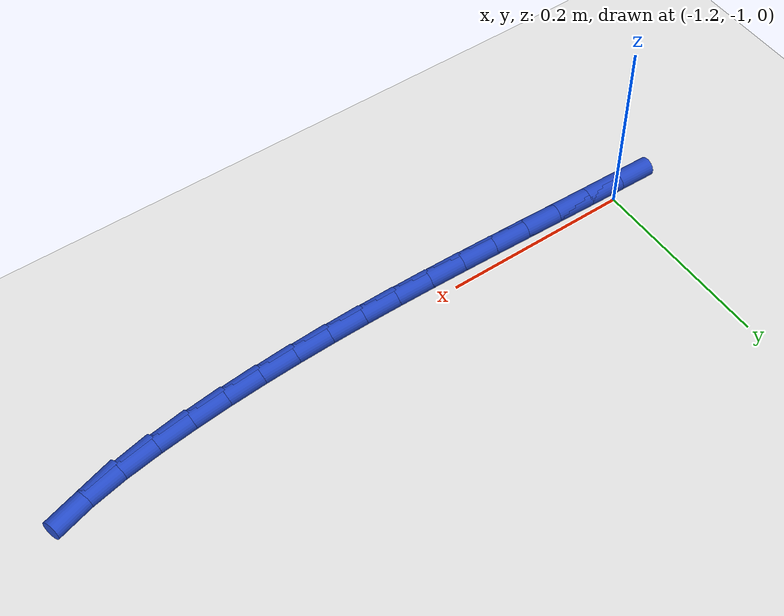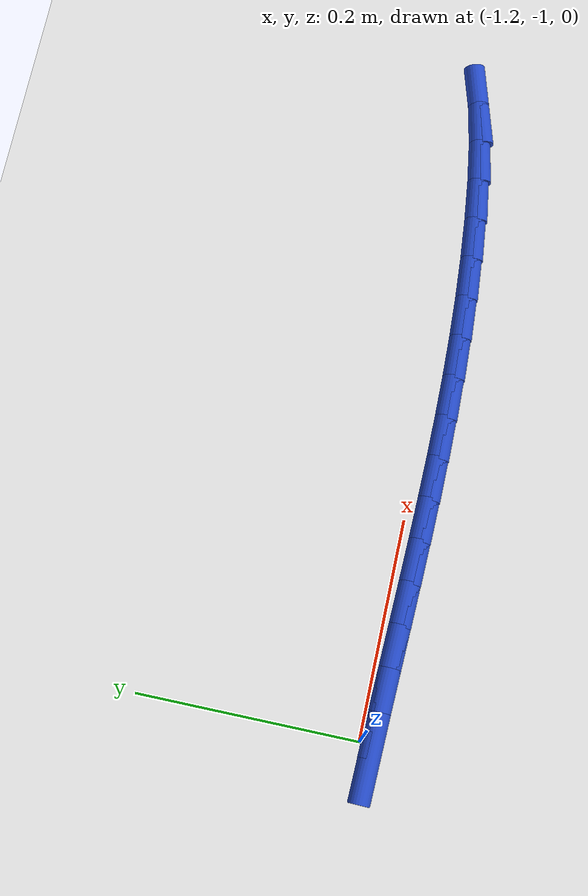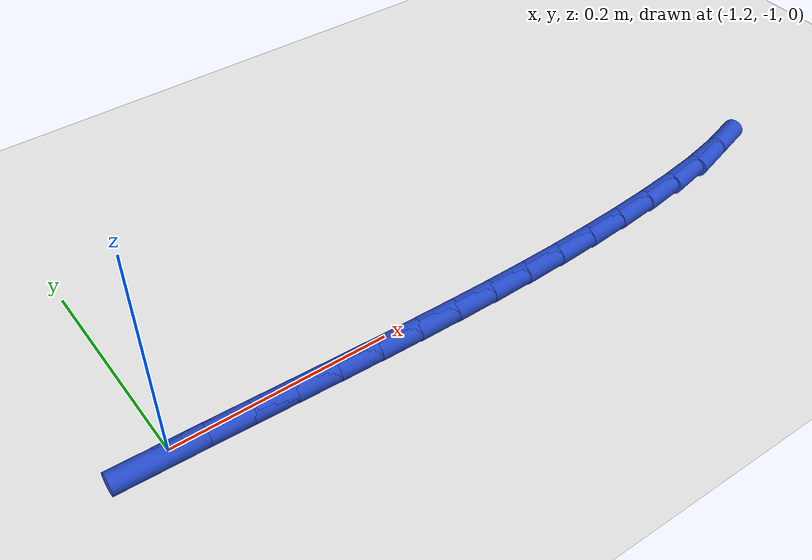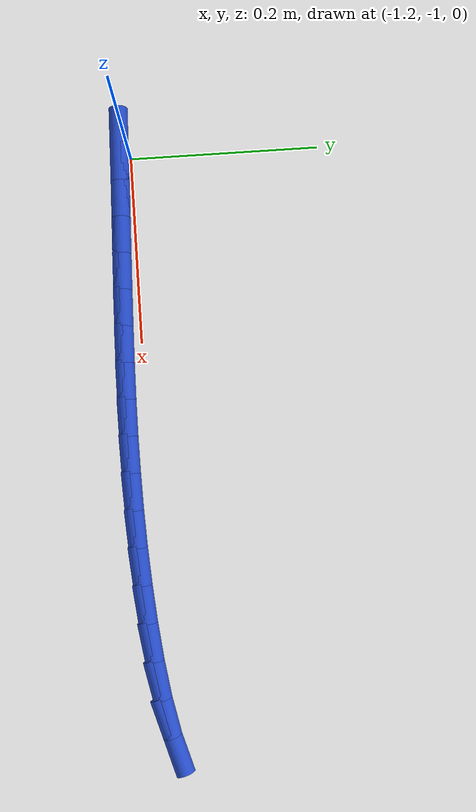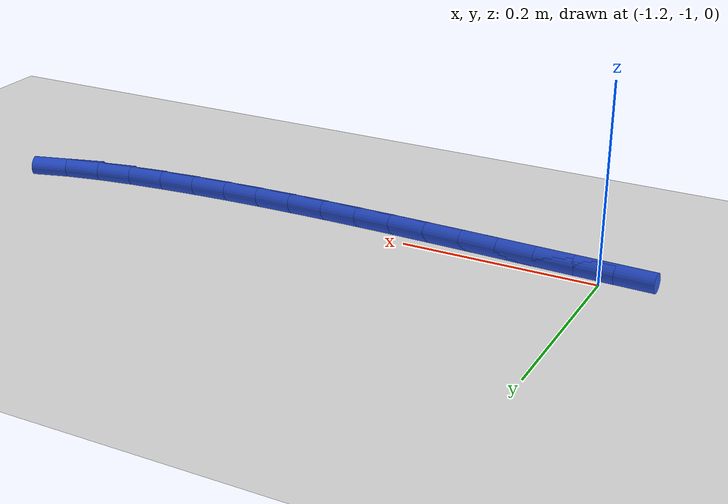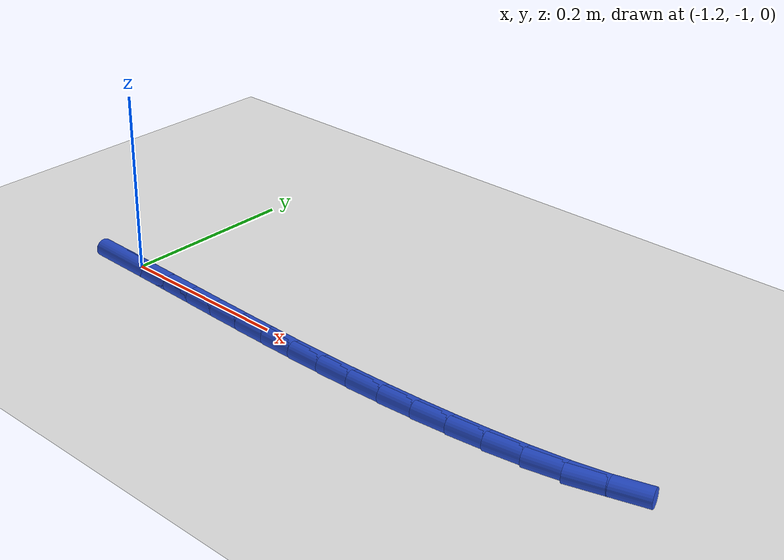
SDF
<sdf version="1.6">
 <world name="default">
  <model name="ground_plane">
   <static>1</static>
   <link name="link">
    <collision name="collision">
     <geometry><plane><normal>0 0 1</normal><size>100 100</size></plane></geometry>
     <surface><friction><ode><mu>100</mu><mu2>50</mu2></ode></friction></surface>
    </collision>
    <visual name="visual">
     <cast_shadows>0</cast_shadows>
     <geometry><plane><normal>0 0 1</normal><size>100 100</size></plane></geometry>
     <material>
      <script><uri>file://media/materials/scripts/gazebo.material</uri><name>Gazebo/WhiteGlow</name></script>
     </material>
    </visual>
   </link>
  </model>
  <model name="line">
   <link name="link_163">
    <pose>-1.2120973122388867 -1.011079760993356 0.01 0 1.57 -0.02630069227347689</pose>
    <collision name="collision">
     <geometry><cylinder><radius>0.01</radius><length>0.08</length></cylinder></geometry>
    </collision>
    <visual name="visual">
     <material>
      <script><name>Gazebo/Blue</name><uri>file://media/materials/scripts/gazebo.material</uri></script>
     </material>
     <geometry><cylinder><radius>0.01</radius><length>0.08</length></cylinder></geometry>
    </visual>
   </link>
   <link name="link_164">
    <pose>-1.1730486498748138 -1.0121070047140128 0.01 0 1.57 -0.03079005885254407</pose>
    <collision name="collision">
     <geometry><cylinder><radius>0.01</radius><length>0.08</length></cylinder></geometry>
    </collision>
    <visual name="visual">
     <material>
      <script><name>Gazebo/Blue</name><uri>file://media/materials/scripts/gazebo.material</uri></script>
     </material>
     <geometry><cylinder><radius>0.01</radius><length>0.08</length></cylinder></geometry>
    </visual>
   </link>
   <link name="link_165">
    <pose>-1.1340988083329757 -1.0133066517508953 0.01 0 1.57 -0.03209150268867717</pose>
    <collision name="collision">
     <geometry><cylinder><radius>0.01</radius><length>0.08</length></cylinder></geometry>
    </collision>
    <visual name="visual">
     <material>
      <script><name>Gazebo/Blue</name><uri>file://media/materials/scripts/gazebo.material</uri></script>
     </material>
     <geometry><cylinder><radius>0.01</radius><length>0.08</length></cylinder></geometry>
    </visual>
   </link>
   <link name="link_166">
    <pose>-1.0952520770311074 -1.0145537298694909 0.01 0 1.57 -0.0309510059806383</pose>
    <collision name="collision">
     <geometry><cylinder><radius>0.01</radius><length>0.08</length></cylinder></geometry>
    </collision>
    <visual name="visual">
     <material>
      <script><name>Gazebo/Blue</name><uri>file://media/materials/scripts/gazebo.material</uri></script>
     </material>
     <geometry><cylinder><radius>0.01</radius><length>0.08</length></cylinder></geometry>
    </visual>
   </link>
   <link name="link_167">
    <pose>-1.0564909231841144 -1.0157538098099366 0.01 0 1.57 -0.02735353984385136</pose>
    <collision name="collision">
     <geometry><cylinder><radius>0.01</radius><length>0.08</length></cylinder></geometry>
    </collision>
    <visual name="visual">
     <material>
      <script><name>Gazebo/Blue</name><uri>file://media/materials/scripts/gazebo.material</uri></script>
     </material>
     <geometry><cylinder><radius>0.01</radius><length>0.08</length></cylinder></geometry>
    </visual>
   </link>
   <link name="link_168">
    <pose>-1.0177978103274559 -1.0168124674622299 0.01 0 1.57 -0.021289632694895238</pose>
    <collision name="collision">
     <geometry><cylinder><radius>0.01</radius><length>0.08</length></cylinder></geometry>
    </collision>
    <visual name="visual">
     <material>
      <script><name>Gazebo/Blue</name><uri>file://media/materials/scripts/gazebo.material</uri></script>
     </material>
     <geometry><cylinder><radius>0.01</radius><length>0.08</length></cylinder></geometry>
    </visual>
   </link>
   <link name="link_169">
    <pose>-0.9791552019965905 -1.0176352787163678 0.01 0 1.57 -0.012756244983048582</pose>
    <collision name="collision">
     <geometry><cylinder><radius>0.01</radius><length>0.08</length></cylinder></geometry>
    </collision>
    <visual name="visual">
     <material>
      <script><name>Gazebo/Blue</name><uri>file://media/materials/scripts/gazebo.material</uri></script>
     </material>
     <geometry><cylinder><radius>0.01</radius><length>0.08</length></cylinder></geometry>
    </visual>
   </link>
   <link name="link_170">
    <pose>-0.9405455617269752 -1.0181278194623475 0.01 0 1.57 -0.001757933645026911</pose>
    <collision name="collision">
     <geometry><cylinder><radius>0.01</radius><length>0.08</length></cylinder></geometry>
    </collision>
    <visual name="visual">
     <material>
      <script><name>Gazebo/Blue</name><uri>file://media/materials/scripts/gazebo.material</uri></script>
     </material>
     <geometry><cylinder><radius>0.01</radius><length>0.08</length></cylinder></geometry>
    </visual>
   </link>
   <link name="link_171">
    <pose>-0.9019513530540703 -1.0181956655901658 0.01 0 1.57 0.011691583905468653</pose>
    <collision name="collision">
     <geometry><cylinder><radius>0.01</radius><length>0.08</length></cylinder></geometry>
    </collision>
    <visual name="visual">
     <material>
      <script><name>Gazebo/Blue</name><uri>file://media/materials/scripts/gazebo.material</uri></script>
     </material>
     <geometry><cylinder><radius>0.01</radius><length>0.08</length></cylinder></geometry>
    </visual>
   </link>
   <link name="link_172">
    <pose>-0.8633550395133338 -1.0177443929898198 0.01 0 1.57 0.02756750898991642</pose>
    <collision name="collision">
     <geometry><cylinder><radius>0.01</radius><length>0.08</length></cylinder></geometry>
    </collision>
    <visual name="visual">
     <material>
      <script><name>Gazebo/Blue</name><uri>file://media/materials/scripts/gazebo.material</uri></script>
     </material>
     <geometry><cylinder><radius>0.01</radius><length>0.08</length></cylinder></geometry>
    </visual>
   </link>
   <link name="link_173">
    <pose>-0.8247390846402238 -1.0166795775513064 0.01 0 1.57 0.045831755872374993</pose>
    <collision name="collision">
     <geometry><cylinder><radius>0.01</radius><length>0.08</length></cylinder></geometry>
    </collision>
    <visual name="visual">
     <material>
      <script><name>Gazebo/Blue</name><uri>file://media/materials/scripts/gazebo.material</uri></script>
     </material>
     <geometry><cylinder><radius>0.01</radius><length>0.08</length></cylinder></geometry>
    </visual>
   </link>
   <link name="link_174">
    <pose>-0.7860859519701986 -1.014906795164623 0.01 0 1.57 0.0664305673455023</pose>
    <collision name="collision">
     <geometry><cylinder><radius>0.01</radius><length>0.08</length></cylinder></geometry>
    </collision>
    <visual name="visual">
     <material>
      <script><name>Gazebo/Blue</name><uri>file://media/materials/scripts/gazebo.material</uri></script>
     </material>
     <geometry><cylinder><radius>0.01</radius><length>0.08</length></cylinder></geometry>
    </visual>
   </link>
   <link name="link_175">
    <pose>-0.7473781050387169 -1.012331621719766 0.01 0 1.57 0.08929209657649063</pose>
    <collision name="collision">
     <geometry><cylinder><radius>0.01</radius><length>0.08</length></cylinder></geometry>
    </collision>
    <visual name="visual">
     <material>
      <script><name>Gazebo/Blue</name><uri>file://media/materials/scripts/gazebo.material</uri></script>
     </material>
     <geometry><cylinder><radius>0.01</radius><length>0.08</length></cylinder></geometry>
    </visual>
   </link>
   <link name="link_176">
    <pose>-0.7085980073812363 -1.008859633106733 0.01 0 1.57 0.11475823525713112</pose>
    <collision name="collision">
     <geometry><cylinder><radius>0.01</radius><length>0.08</length></cylinder></geometry>
    </collision>
    <visual name="visual">
     <material>
      <script><name>Gazebo/Blue</name><uri>file://media/materials/scripts/gazebo.material</uri></script>
     </material>
     <geometry><cylinder><radius>0.01</radius><length>0.08</length></cylinder></geometry>
    </visual>
   </link>
   <link name="link_177">
    <pose>-0.669742171950492 -1.0043809280221594 0.01 0 1.57 0.15155274244566644</pose>
    <collision name="collision">
     <geometry><cylinder><radius>0.01</radius><length>0.08</length></cylinder></geometry>
    </collision>
    <visual name="visual">
     <material>
      <script><name>Gazebo/Blue</name><uri>file://media/materials/scripts/gazebo.material</uri></script>
     </material>
     <geometry><cylinder><radius>0.01</radius><length>0.08</length></cylinder></geometry>
    </visual>
   </link>
   <link name="link_178">
    <pose>-0.631086928202883 -0.9984773522260539 0.01 0 1.57 0.20868704423299994</pose>
    <collision name="collision">
     <geometry><cylinder><radius>0.01</radius><length>0.08</length></cylinder></geometry>
    </collision>
    <visual name="visual">
     <material>
      <script><name>Gazebo/Blue</name><uri>file://media/materials/scripts/gazebo.material</uri></script>
     </material>
     <geometry><cylinder><radius>0.01</radius><length>0.08</length></cylinder></geometry>
    </visual>
   </link>
   <link name="link_179">
    <pose>-0.5931662821319903 -0.990446888488768 0.01 0 1.57 0.2883787175128771</pose>
    <collision name="collision">
     <geometry><cylinder><radius>0.01</radius><length>0.08</length></cylinder></geometry>
    </collision>
    <visual name="visual">
     <material>
      <script><name>Gazebo/Blue</name><uri>file://media/materials/scripts/gazebo.material</uri></script>
     </material>
     <geometry><cylinder><radius>0.01</radius><length>0.08</length></cylinder></geometry>
    </visual>
   </link>
  </model>
 </world>
</sdf>
